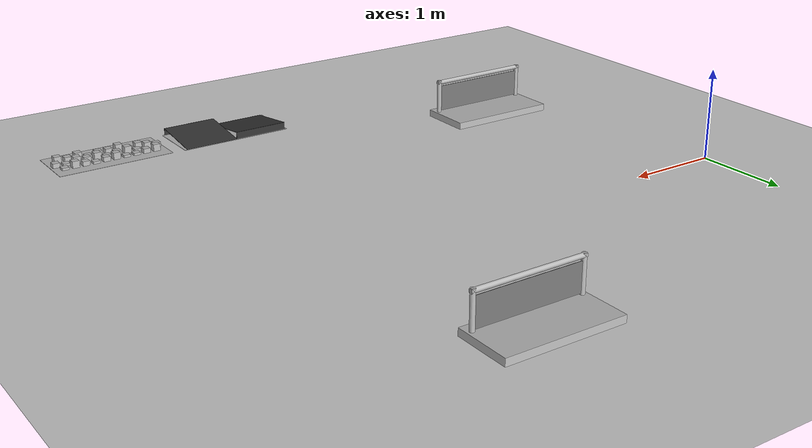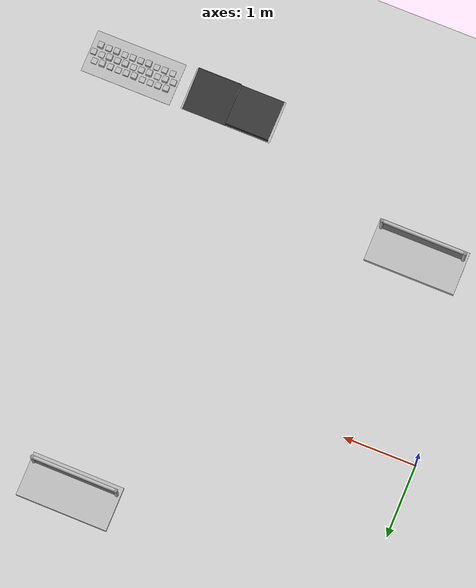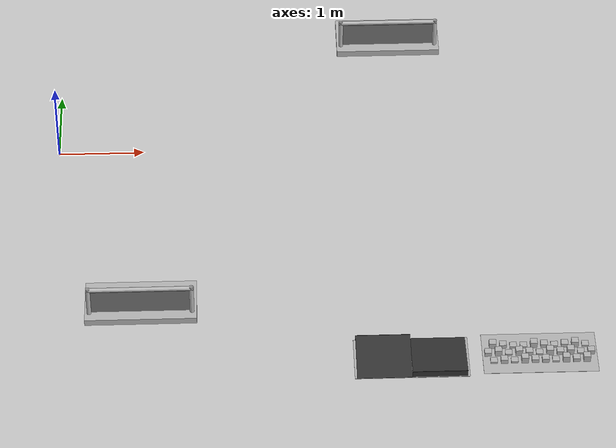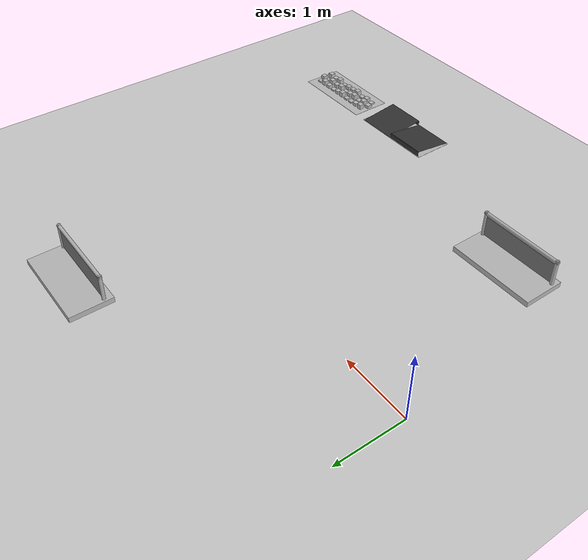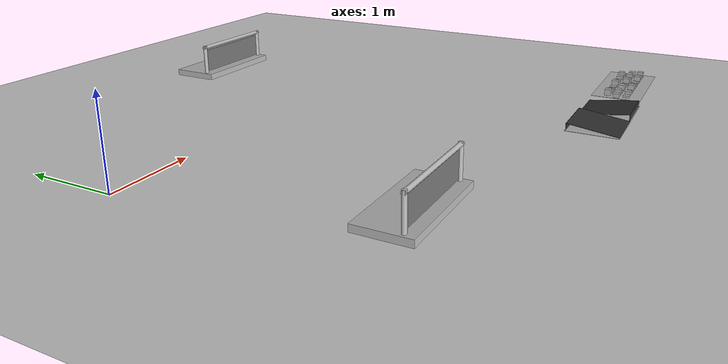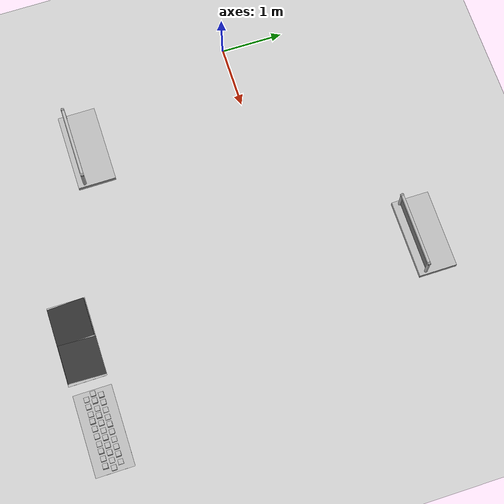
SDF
<sdf version="1.4">
 <world name="default">
  <light name="sun" type="directional">
   <pose>0 0 10 0 -0 0</pose>
   <diffuse>0.8 0.8 0.8 1</diffuse>
   <specular>0.2 0.2 0.2 1</specular>
   <attenuation>
    <range>1000</range>
    <constant>0.9</constant>
    <linear>0.01</linear>
    <quadratic>0.001</quadratic>
   </attenuation>
   <direction>-0.5 0.1 -0.9</direction>
  </light>
  <model name="ground_plane">
   <static>1</static>
   <link name="link">
    <collision name="collision">
     <geometry><plane><normal>0 0 1</normal><size>100 100</size></plane></geometry>
     <surface><friction><ode><mu>100</mu><mu2>50</mu2></ode></friction></surface>
    </collision>
    <visual name="visual">
     <cast_shadows>0</cast_shadows>
     <geometry><plane><normal>0 0 1</normal><size>100 100</size></plane></geometry>
     <material>
      <script><uri>file://media/materials/scripts/gazebo.material</uri><name>Gazebo/Grey</name></script>
     </material>
    </visual>
    <velocity_decay><linear>0</linear><angular>0</angular></velocity_decay>
   </link>
  </model>
  <physics type="ode">
   <max_step_size>0.001</max_step_size>
   <real_time_factor>1</real_time_factor>
   <real_time_update_rate>1000</real_time_update_rate>
   <gravity>0 0 -9.8</gravity>
  </physics>
  <scene><ambient>0.4 0.4 0.4 1</ambient><background>0.7 0.7 0.7 1</background><shadows>1</shadows></scene>
  <spherical_coordinates>
   <surface_model>EARTH_WGS84</surface_model>
   <latitude_deg>0</latitude_deg>
   <longitude_deg>0</longitude_deg>
   <elevation>0</elevation>
   <heading_deg>0</heading_deg>
  </spherical_coordinates>
  <model name="frc2016_roughterrain">
   <static>1</static>
   <link name="link">
    <visual name="platform">
     <pose>0 0 0.08269 0 -0 0</pose>
     <geometry><box><size>1.27 0.5969 0.003175</size></box></geometry>
    </visual>
    <collision name="platform">
     <pose>0 0 0.08269 0 -0 0</pose>
     <geometry><box><size>1.27 0.5969 0.003175</size></box></geometry>
    </collision>
    <visual name="row1_block1_sm">
     <pose>0.51435 0.1143 0.09698 0 -0 0</pose>
     <geometry><box><size>0.0762 0.0762 0.0254</size></box></geometry>
    </visual>
    <collision name="row1_block1_sm">
     <pose>0.51435 0.1143 0.09698 0 -0 0</pose>
     <geometry><box><size>0.0762 0.0762 0.0254</size></box></geometry>
    </collision>
    <visual name="row1_block2_lg">
     <pose>0.40005 0.1143 0.12238 0 -0 0</pose>
     <geometry><box><size>0.0762 0.0762 0.0762</size></box></geometry>
    </visual>
    <collision name="row1_block2_lg">
     <pose>0.40005 0.1143 0.12238 0 -0 0</pose>
     <geometry><box><size>0.0762 0.0762 0.0762</size></box></geometry>
    </collision>
    <visual name="row1_block3_md">
     <pose>0.28575 0.1143 0.10968 0 -0 0</pose>
     <geometry><box><size>0.0762 0.0762 0.0508</size></box></geometry>
    </visual>
    <collision name="row1_block3_md">
     <pose>0.28575 0.1143 0.10968 0 -0 0</pose>
     <geometry><box><size>0.0762 0.0762 0.0508</size></box></geometry>
    </collision>
    <visual name="row1_block4_sm">
     <pose>0.17145 0.1143 0.09698 0 -0 0</pose>
     <geometry><box><size>0.0762 0.0762 0.0254</size></box></geometry>
    </visual>
    <collision name="row1_block4_sm">
     <pose>0.17145 0.1143 0.09698 0 -0 0</pose>
     <geometry><box><size>0.0762 0.0762 0.0254</size></box></geometry>
    </collision>
    <visual name="row1_block5_md">
     <pose>0.05715 0.1143 0.10968 0 -0 0</pose>
     <geometry><box><size>0.0762 0.0762 0.0508</size></box></geometry>
    </visual>
    <collision name="row1_block5_md">
     <pose>0.05715 0.1143 0.10968 0 -0 0</pose>
     <geometry><box><size>0.0762 0.0762 0.0508</size></box></geometry>
    </collision>
    <visual name="row1_block6_lg">
     <pose>-0.05715 0.1143 0.12238 0 -0 0</pose>
     <geometry><box><size>0.0762 0.0762 0.0762</size></box></geometry>
    </visual>
    <collision name="row1_block6_lg">
     <pose>-0.05715 0.1143 0.12238 0 -0 0</pose>
     <geometry><box><size>0.0762 0.0762 0.0762</size></box></geometry>
    </collision>
    <visual name="row1_block7_sm">
     <pose>-0.17145 0.1143 0.09698 0 -0 0</pose>
     <geometry><box><size>0.0762 0.0762 0.0254</size></box></geometry>
    </visual>
    <collision name="row1_block7_sm">
     <pose>-0.17145 0.1143 0.09698 0 -0 0</pose>
     <geometry><box><size>0.0762 0.0762 0.0254</size></box></geometry>
    </collision>
    <visual name="row1_block8_sm">
     <pose>-0.28575 0.1143 0.09698 0 -0 0</pose>
     <geometry><box><size>0.0762 0.0762 0.0254</size></box></geometry>
    </visual>
    <collision name="row1_block8_sm">
     <pose>-0.28575 0.1143 0.09698 0 -0 0</pose>
     <geometry><box><size>0.0762 0.0762 0.0254</size></box></geometry>
    </collision>
    <visual name="row1_block9_md">
     <pose>-0.40005 0.1143 0.10968 0 -0 0</pose>
     <geometry><box><size>0.0762 0.0762 0.0508</size></box></geometry>
    </visual>
    <collision name="row1_block9_md">
     <pose>-0.40005 0.1143 0.10968 0 -0 0</pose>
     <geometry><box><size>0.0762 0.0762 0.0508</size></box></geometry>
    </collision>
    <visual name="row1_block10_lg">
     <pose>-0.51435 0.1143 0.12238 0 -0 0</pose>
     <geometry><box><size>0.0762 0.0762 0.0762</size></box></geometry>
    </visual>
    <collision name="row1_block10_lg">
     <pose>-0.51435 0.1143 0.12238 0 -0 0</pose>
     <geometry><box><size>0.0762 0.0762 0.0762</size></box></geometry>
    </collision>
    <visual name="row2_block1_md">
     <pose>0.5715 0 0.10968 0 -0 0</pose>
     <geometry><box><size>0.0762 0.0762 0.0508</size></box></geometry>
    </visual>
    <collision name="row2_block1_md">
     <pose>0.5715 0 0.10968 0 -0 0</pose>
     <geometry><box><size>0.0762 0.0762 0.0508</size></box></geometry>
    </collision>
    <visual name="row2_block2_sm">
     <pose>0.4572 0 0.09698 0 -0 0</pose>
     <geometry><box><size>0.0762 0.0762 0.0254</size></box></geometry>
    </visual>
    <collision name="row2_block2_sm">
     <pose>0.4572 0 0.09698 0 -0 0</pose>
     <geometry><box><size>0.0762 0.0762 0.0254</size></box></geometry>
    </collision>
    <visual name="row2_block3_lg">
     <pose>0.3429 0 0.12238 0 -0 0</pose>
     <geometry><box><size>0.0762 0.0762 0.0762</size></box></geometry>
    </visual>
    <collision name="row2_block3_lg">
     <pose>0.3429 0 0.12238 0 -0 0</pose>
     <geometry><box><size>0.0762 0.0762 0.0762</size></box></geometry>
    </collision>
    <visual name="row2_block4_md">
     <pose>0.2286 0 0.10968 0 -0 0</pose>
     <geometry><box><size>0.0762 0.0762 0.0508</size></box></geometry>
    </visual>
    <collision name="row2_block4_md">
     <pose>0.2286 0 0.10968 0 -0 0</pose>
     <geometry><box><size>0.0762 0.0762 0.0508</size></box></geometry>
    </collision>
    <visual name="row2_block5_lg">
     <pose>0.1143 0 0.12238 0 -0 0</pose>
     <geometry><box><size>0.0762 0.0762 0.0762</size></box></geometry>
    </visual>
    <collision name="row2_block5_lg">
     <pose>0.1143 0 0.12238 0 -0 0</pose>
     <geometry><box><size>0.0762 0.0762 0.0762</size></box></geometry>
    </collision>
    <visual name="row2_block6_sm">
     <pose>0 0 0.09698 0 -0 0</pose>
     <geometry><box><size>0.0762 0.0762 0.0254</size></box></geometry>
    </visual>
    <collision name="row2_block6_sm">
     <pose>0 0 0.09698 0 -0 0</pose>
     <geometry><box><size>0.0762 0.0762 0.0254</size></box></geometry>
    </collision>
    <visual name="row2_block7_md">
     <pose>-0.1143 0 0.10968 0 -0 0</pose>
     <geometry><box><size>0.0762 0.0762 0.0508</size></box></geometry>
    </visual>
    <collision name="row2_block7_md">
     <pose>-0.1143 0 0.10968 0 -0 0</pose>
     <geometry><box><size>0.0762 0.0762 0.0508</size></box></geometry>
    </collision>
    <visual name="row2_block8_lg">
     <pose>-0.2286 0 0.12238 0 -0 0</pose>
     <geometry><box><size>0.0762 0.0762 0.0762</size></box></geometry>
    </visual>
    <collision name="row2_block8_lg">
     <pose>-0.2286 0 0.12238 0 -0 0</pose>
     <geometry><box><size>0.0762 0.0762 0.0762</size></box></geometry>
    </collision>
    <visual name="row2_block9_sm">
     <pose>-0.3429 0 0.09698 0 -0 0</pose>
     <geometry><box><size>0.0762 0.0762 0.0254</size></box></geometry>
    </visual>
    <collision name="row2_block9_sm">
     <pose>-0.3429 0 0.09698 0 -0 0</pose>
     <geometry><box><size>0.0762 0.0762 0.0254</size></box></geometry>
    </collision>
    <visual name="row2_block10_lg">
     <pose>-0.4572 0 0.12238 0 -0 0</pose>
     <geometry><box><size>0.0762 0.0762 0.0762</size></box></geometry>
    </visual>
    <collision name="row2_block10_lg">
     <pose>-0.4572 0 0.12238 0 -0 0</pose>
     <geometry><box><size>0.0762 0.0762 0.0762</size></box></geometry>
    </collision>
    <visual name="row2_block11_md">
     <pose>-0.5715 0 0.10968 0 -0 0</pose>
     <geometry><box><size>0.0762 0.0762 0.0508</size></box></geometry>
    </visual>
    <collision name="row2_block11_md">
     <pose>-0.5715 0 0.10968 0 -0 0</pose>
     <geometry><box><size>0.0762 0.0762 0.0508</size></box></geometry>
    </collision>
    <visual name="row3_block1_lg">
     <pose>0.51435 -0.1143 0.12238 0 -0 0</pose>
     <geometry><box><size>0.0762 0.0762 0.0762</size></box></geometry>
    </visual>
    <collision name="row3_block1_lg">
     <pose>0.51435 -0.1143 0.12238 0 -0 0</pose>
     <geometry><box><size>0.0762 0.0762 0.0762</size></box></geometry>
    </collision>
    <visual name="row3_block2_md">
     <pose>0.40005 -0.1143 0.10968 0 -0 0</pose>
     <geometry><box><size>0.0762 0.0762 0.0508</size></box></geometry>
    </visual>
    <collision name="row3_block2_md">
     <pose>0.40005 -0.1143 0.10968 0 -0 0</pose>
     <geometry><box><size>0.0762 0.0762 0.0508</size></box></geometry>
    </collision>
    <visual name="row3_block3_lg">
     <pose>0.28575 -0.1143 0.12238 0 -0 0</pose>
     <geometry><box><size>0.0762 0.0762 0.0762</size></box></geometry>
    </visual>
    <collision name="row3_block3_lg">
     <pose>0.28575 -0.1143 0.12238 0 -0 0</pose>
     <geometry><box><size>0.0762 0.0762 0.0762</size></box></geometry>
    </collision>
    <visual name="row3_block4_sm">
     <pose>0.17145 -0.1143 0.09698 0 -0 0</pose>
     <geometry><box><size>0.0762 0.0762 0.0254</size></box></geometry>
    </visual>
    <collision name="row3_block4_sm">
     <pose>0.17145 -0.1143 0.09698 0 -0 0</pose>
     <geometry><box><size>0.0762 0.0762 0.0254</size></box></geometry>
    </collision>
    <visual name="row3_block5_md">
     <pose>0.05715 -0.1143 0.10968 0 -0 0</pose>
     <geometry><box><size>0.0762 0.0762 0.0508</size></box></geometry>
    </visual>
    <collision name="row3_block5_md">
     <pose>0.05715 -0.1143 0.10968 0 -0 0</pose>
     <geometry><box><size>0.0762 0.0762 0.0508</size></box></geometry>
    </collision>
    <visual name="row3_block6_md">
     <pose>-0.05715 -0.1143 0.10968 0 -0 0</pose>
     <geometry><box><size>0.0762 0.0762 0.0508</size></box></geometry>
    </visual>
    <collision name="row3_block6_md">
     <pose>-0.05715 -0.1143 0.10968 0 -0 0</pose>
     <geometry><box><size>0.0762 0.0762 0.0508</size></box></geometry>
    </collision>
    <visual name="row3_block7_lg">
     <pose>-0.17145 -0.1143 0.12238 0 -0 0</pose>
     <geometry><box><size>0.0762 0.0762 0.0762</size></box></geometry>
    </visual>
    <collision name="row3_block7_lg">
     <pose>-0.17145 -0.1143 0.12238 0 -0 0</pose>
     <geometry><box><size>0.0762 0.0762 0.0762</size></box></geometry>
    </collision>
    <visual name="row3_block8_sm">
     <pose>-0.28575 -0.1143 0.09698 0 -0 0</pose>
     <geometry><box><size>0.0762 0.0762 0.0254</size></box></geometry>
    </visual>
    <collision name="row3_block8_sm">
     <pose>-0.28575 -0.1143 0.09698 0 -0 0</pose>
     <geometry><box><size>0.0762 0.0762 0.0254</size></box></geometry>
    </collision>
    <visual name="row3_block9_md">
     <pose>-0.40005 -0.1143 0.10968 0 -0 0</pose>
     <geometry><box><size>0.0762 0.0762 0.0508</size></box></geometry>
    </visual>
    <collision name="row3_block9_md">
     <pose>-0.40005 -0.1143 0.10968 0 -0 0</pose>
     <geometry><box><size>0.0762 0.0762 0.0508</size></box></geometry>
    </collision>
    <visual name="row3_block10_sm">
     <pose>-0.51435 -0.1143 0.09698 0 -0 0</pose>
     <geometry><box><size>0.0762 0.0762 0.0254</size></box></geometry>
    </visual>
    <collision name="row3_block10_sm">
     <pose>-0.51435 -0.1143 0.09698 0 -0 0</pose>
     <geometry><box><size>0.0762 0.0762 0.0254</size></box></geometry>
    </collision>
    <velocity_decay><linear>0</linear><angular>0</angular></velocity_decay>
   </link>
   <pose>5.42182 -3.54562 0 0 -0 0</pose>
  </model>
  <model name="frc2016_ramparts">
   <static>1</static>
   <link name="link">
    <visual name="platform">
     <pose>0 0 0.06967 0 -0 0</pose>
     <geometry><box><size>1.27 0.5969 0.003175</size></box></geometry>
    </visual>
    <collision name="platform">
     <pose>0 0 0.06967 0 -0 0</pose>
     <geometry><box><size>1.27 0.5969 0.003175</size></box></geometry>
    </collision>
    <visual name="ramp1">
     <pose>0.30472 0.00588 0.1109 -0.13 0 0</pose>
     <geometry><box><size>0.60957 0.588891 0.00462</size></box></geometry>
     <material><ambient>0.2 0.2 0.2 1</ambient><diffuse>0.2 0.2 0.2 1</diffuse></material>
    </visual>
    <collision name="ramp1">
     <pose>0.30472 0.00588 0.1109 -0.13 0 0</pose>
     <geometry><box><size>0.60957 0.588891 0.00462</size></box></geometry>
    </collision>
    <visual name="up1">
     <pose>0.30472 -0.28806 0.11072 0 -0 0</pose>
     <geometry><box><size>0.60957 0.00462 0.07872</size></box></geometry>
     <material><ambient>0.2 0.2 0.2 1</ambient><diffuse>0.2 0.2 0.2 1</diffuse></material>
    </visual>
    <collision name="up1">
     <pose>0.30472 -0.28806 0.11072 0 -0 0</pose>
     <geometry><box><size>0.60957 0.00462 0.07872</size></box></geometry>
    </collision>
    <visual name="ramp2">
     <pose>-0.30472 -0.00619 0.1109 0.13 -0 0</pose>
     <geometry><box><size>0.60957 0.588891 0.00462</size></box></geometry>
     <material><ambient>0.2 0.2 0.2 1</ambient><diffuse>0.2 0.2 0.2 1</diffuse></material>
    </visual>
    <collision name="ramp2">
     <pose>-0.30472 -0.00619 0.1109 0.13 -0 0</pose>
     <geometry><box><size>0.60957 0.588891 0.00462</size></box></geometry>
    </collision>
    <visual name="up2">
     <pose>-0.30472 0.28806 0.11072 0 -0 0</pose>
     <geometry><box><size>0.60957 0.00462 0.07872</size></box></geometry>
     <material><ambient>0.2 0.2 0.2 1</ambient><diffuse>0.2 0.2 0.2 1</diffuse></material>
    </visual>
    <collision name="up2">
     <pose>-0.30472 0.28806 0.11072 0 -0 0</pose>
     <geometry><box><size>0.60957 0.00462 0.07872</size></box></geometry>
    </collision>
    <velocity_decay><linear>0</linear><angular>0</angular></velocity_decay>
   </link>
   <pose>4 -3.5682 0 0 -0 0</pose>
  </model>
  <model name="frc2016_lowbar">
   <link name="base">
    <inertial>
     <mass>50</mass>
     <inertia>
      <ixx>0.035543</ixx>
      <ixy>0</ixy>
      <ixz>0</ixz>
      <iyy>0.134412</iyy>
      <iyz>0</iyz>
      <izz>0.165376</izz>
     </inertia>
    </inertial>
    <visual name="platform">
     <pose>0 0 0.039065 0 -0 0</pose>
     <geometry><box><size>1.26 0.5996 0.07813</size></box></geometry>
    </visual>
    <collision name="platform">
     <pose>0 0 0.039065 0 -0 0</pose>
     <geometry><box><size>1.27 0.6096 0.07813</size></box></geometry>
    </collision>
    <visual name="right_column">
     <pose>-0.57845 -0.18464 0.26863 0 -0 0</pose>
     <geometry><cylinder><radius>0.0254</radius><length>0.381</length></cylinder></geometry>
    </visual>
    <collision name="right_column">
     <pose>-0.57845 -0.18464 0.26863 0 -0 0</pose>
     <geometry><cylinder><radius>0.0254</radius><length>0.381</length></cylinder></geometry>
    </collision>
    <visual name="left_column">
     <pose>0.57845 -0.18464 0.26863 0 -0 0</pose>
     <geometry><cylinder><radius>0.0254</radius><length>0.381</length></cylinder></geometry>
    </visual>
    <collision name="left_column">
     <pose>0.57845 -0.18464 0.26863 0 -0 0</pose>
     <geometry><cylinder><radius>0.0254</radius><length>0.381</length></cylinder></geometry>
    </collision>
    <visual name="horizontal">
     <pose>0 -0.18464 0.43556 0 1.5707 0</pose>
     <geometry><cylinder><radius>0.0254</radius><length>1.2018</length></cylinder></geometry>
    </visual>
    <collision name="horizontal">
     <pose>0 -0.18464 0.43556 0 1.5707 0</pose>
     <geometry><cylinder><radius>0.0254</radius><length>1.2018</length></cylinder></geometry>
    </collision>
    <velocity_decay><linear>0</linear><angular>0</angular></velocity_decay>
   </link>
   <link name="wall">
    <pose>0 -0.1778 0.24323 0 -0 0</pose>
    <inertial>
     <mass>1</mass>
     <inertia>
      <ixx>0.00774528</ixx>
      <ixy>0</ixy>
      <ixz>0</ixz>
      <iyy>0.116613</iyy>
      <iyz>0</iyz>
      <izz>0.108874</izz>
     </inertia>
    </inertial>
    <visual name="visual">
     <geometry><box><size>1.1176 0.00635 0.3</size></box></geometry>
     <material><ambient>0.46 0.46 0.46 1</ambient><diffuse>0.46 0.46 0.46 1</diffuse></material>
    </visual>
    <collision name="collision"><geometry><box><size>1.143 0.00635 0.3</size></box></geometry></collision>
    <velocity_decay><linear>0</linear><angular>0</angular></velocity_decay>
   </link>
   <joint name="bar_joint" type="revolute">
    <pose>0 0 0.36378 0 -0 0</pose>
    <parent>base</parent>
    <child>wall</child>
    <axis><xyz>1 0 0</xyz><limit><lower>-1.5707</lower><upper>1.5707</upper></limit></axis>
   </joint>
   <pose>4 2 0 0 -0 0</pose>
   <static>0</static>
  </model>
  <model name="frc2016_lowbar_0">
   <link name="base">
    <inertial>
     <mass>50</mass>
     <inertia>
      <ixx>0.035543</ixx>
      <ixy>0</ixy>
      <ixz>0</ixz>
      <iyy>0.134412</iyy>
      <iyz>0</iyz>
      <izz>0.165376</izz>
     </inertia>
    </inertial>
    <visual name="platform">
     <pose>0 0 0.039065 0 -0 0</pose>
     <geometry><box><size>1.26 0.5996 0.07813</size></box></geometry>
    </visual>
    <collision name="platform">
     <pose>0 0 0.039065 0 -0 0</pose>
     <geometry><box><size>1.27 0.6096 0.07813</size></box></geometry>
    </collision>
    <visual name="right_column">
     <pose>-0.57845 -0.18464 0.26863 0 -0 0</pose>
     <geometry><cylinder><radius>0.0254</radius><length>0.381</length></cylinder></geometry>
    </visual>
    <collision name="right_column">
     <pose>-0.57845 -0.18464 0.26863 0 -0 0</pose>
     <geometry><cylinder><radius>0.0254</radius><length>0.381</length></cylinder></geometry>
    </collision>
    <visual name="left_column">
     <pose>0.57845 -0.18464 0.26863 0 -0 0</pose>
     <geometry><cylinder><radius>0.0254</radius><length>0.381</length></cylinder></geometry>
    </visual>
    <collision name="left_column">
     <pose>0.57845 -0.18464 0.26863 0 -0 0</pose>
     <geometry><cylinder><radius>0.0254</radius><length>0.381</length></cylinder></geometry>
    </collision>
    <visual name="horizontal">
     <pose>0 -0.18464 0.43556 0 1.5707 0</pose>
     <geometry><cylinder><radius>0.0254</radius><length>1.2018</length></cylinder></geometry>
    </visual>
    <collision name="horizontal">
     <pose>0 -0.18464 0.43556 0 1.5707 0</pose>
     <geometry><cylinder><radius>0.0254</radius><length>1.2018</length></cylinder></geometry>
    </collision>
    <velocity_decay><linear>0</linear><angular>0</angular></velocity_decay>
   </link>
   <link name="wall">
    <pose>0 -0.1778 0.24323 0 -0 0</pose>
    <inertial>
     <mass>1</mass>
     <inertia>
      <ixx>0.00774528</ixx>
      <ixy>0</ixy>
      <ixz>0</ixz>
      <iyy>0.116613</iyy>
      <iyz>0</iyz>
      <izz>0.108874</izz>
     </inertia>
    </inertial>
    <visual name="visual">
     <geometry><box><size>1.1176 0.00635 0.3</size></box></geometry>
     <material><ambient>0.46 0.46 0.46 1</ambient><diffuse>0.46 0.46 0.46 1</diffuse></material>
    </visual>
    <collision name="collision"><geometry><box><size>1.143 0.00635 0.3</size></box></geometry></collision>
    <velocity_decay><linear>0</linear><angular>0</angular></velocity_decay>
   </link>
   <joint name="bar_joint" type="revolute">
    <pose>0 0 0.36378 0 -0 0</pose>
    <parent>base</parent>
    <child>wall</child>
    <axis><xyz>1 0 0</xyz><limit><lower>-1.5707</lower><upper>1.5707</upper></limit></axis>
   </joint>
   <pose>1 -2.57999 0 0 -0 0</pose>
   <static>0</static>
  </model>
 </world>
</sdf>
